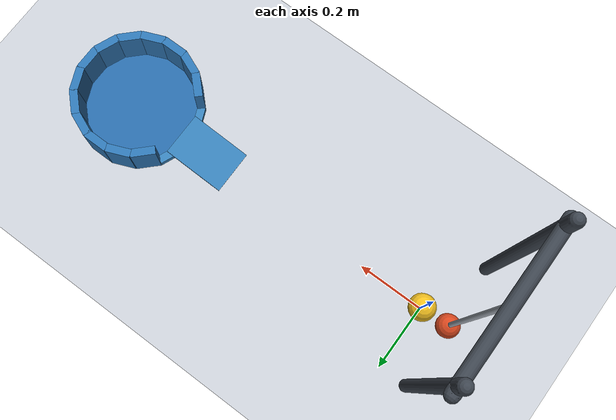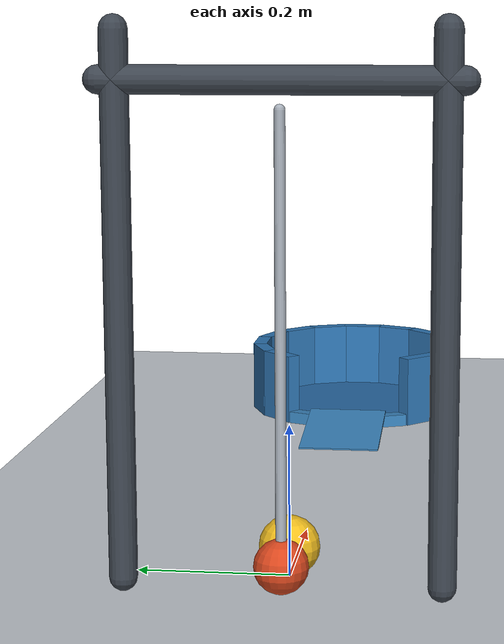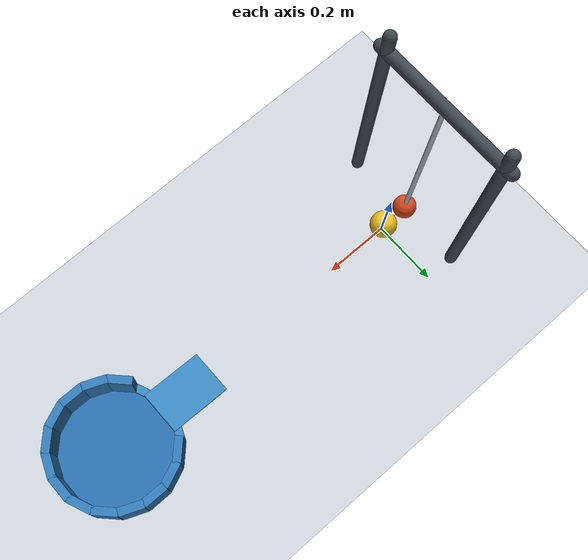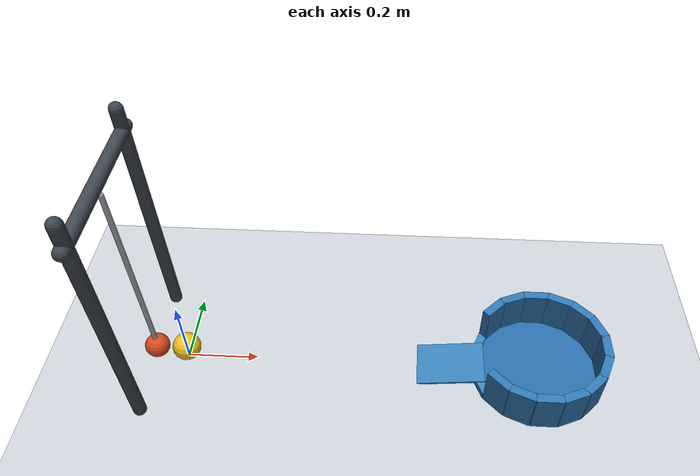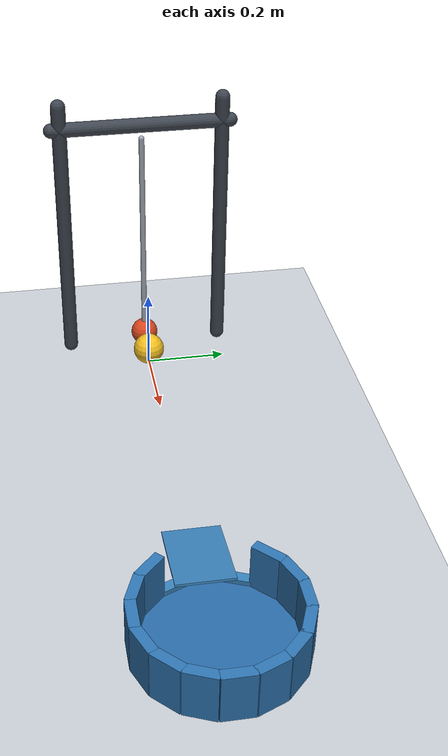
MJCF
<mujoco model="pendulum_ball_cup">
  <compiler angle="radian" autolimits="true"/>
  <option timestep="0.002" gravity="0 0 -9.81" integrator="implicitfast" solver="Newton" iterations="80" cone="elliptic"/>
  <size njmax="2000" nconmax="300"/>

  <visual>
    <global azimuth="125" elevation="-22"/>
    <headlight ambient="0.35 0.35 0.35" diffuse="0.65 0.65 0.65" specular="0.2 0.2 0.2"/>
  </visual>

  <worldbody>
    <light name="main_light" pos="0.5 -1.5 3" dir="0 0 -1" diffuse="0.8 0.8 0.8"/>
    <geom name="floor" type="plane" size="3 2 0.1" rgba="0.78 0.80 0.83 1" friction="0.45 0.005 0.0002" condim="6" solref="0.008 1" solimp="0.95 0.99 0.001"/>

    <body name="support" pos="-0.085 0 0.64">
      <geom name="support_left_leg" type="capsule" fromto="0 -0.20 -0.62 0 -0.20 0.06" size="0.018" rgba="0.24 0.27 0.31 1"/>
      <geom name="support_right_leg" type="capsule" fromto="0 0.20 -0.62 0 0.20 0.06" size="0.018" rgba="0.24 0.27 0.31 1"/>
      <geom name="support_crossbar" type="capsule" fromto="0 -0.22 0 0 0.22 0" size="0.018" rgba="0.24 0.27 0.31 1"/>
    </body>

    <body name="pendulum" pos="-0.085 0 0.64">
      <joint name="pendulum_hinge" type="hinge" axis="0 1 0" range="-0.9 0.9" damping="0.006"/>
      <geom name="pendulum_rod" type="capsule" fromto="0 0 -0.035 0 0 -0.575" size="0.007" mass="0.018" rgba="0.65 0.68 0.72 1" friction="0.35 0.005 0.0002" condim="6"/>
      <geom name="pendulum_bob" type="sphere" pos="0 0 -0.6" size="0.035" mass="0.24" rgba="0.85 0.28 0.12 1" friction="0.35 0.005 0.0002" condim="6" solref="0.008 1" solimp="0.95 0.99 0.001"/>
    </body>

    <body name="ball" pos="0 0 0.04">
      <freejoint name="ball_free"/>
      <geom name="ball" type="sphere" size="0.04" mass="0.05" rgba="0.95 0.75 0.12 1" friction="0.45 0.005 0.0002" condim="6" solref="0.008 1" solimp="0.95 0.99 0.001"/>
    </body>

    <!-- Fixed receiving cup, centered exactly 1 m from the ball's start.
         A ramp crosses its lowered front lip; the other walls retain the ball. -->
    <body name="cup" pos="1 0 0">
      <geom name="cup_base" type="cylinder" pos="0 0 0.004" size="0.187 0.004" rgba="0.16 0.42 0.66 1" friction="0.65 0.015 0.004" condim="6" solref="0.008 1" solimp="0.95 0.99 0.001"/>
      <geom name="cup_entry_ramp" type="box" pos="-0.245 0 0.010" euler="0 -0.126 0" size="0.095 0.067 0.003" rgba="0.22 0.51 0.73 1" friction="0.45 0.005 0.0002" condim="6" solref="0.008 1" solimp="0.95 0.99 0.001"/>

      <geom name="cup_wall_00" type="box" pos="0.175 0 0.060" euler="0 0 0" size="0.012 0.036 0.060" rgba="0.18 0.46 0.70 1" friction="0.65 0.015 0.004" condim="6" solref="0.008 1"/>
      <geom name="cup_wall_01" type="box" pos="0.161679 0.066970 0.060" euler="0 0 0.392699" size="0.012 0.036 0.060" rgba="0.18 0.46 0.70 1" friction="0.65 0.015 0.004" condim="6" solref="0.008 1"/>
      <geom name="cup_wall_02" type="box" pos="0.123744 0.123744 0.060" euler="0 0 0.785398" size="0.012 0.036 0.060" rgba="0.18 0.46 0.70 1" friction="0.65 0.015 0.004" condim="6" solref="0.008 1"/>
      <geom name="cup_wall_03" type="box" pos="0.066970 0.161679 0.060" euler="0 0 1.178097" size="0.012 0.036 0.060" rgba="0.18 0.46 0.70 1" friction="0.65 0.015 0.004" condim="6" solref="0.008 1"/>
      <geom name="cup_wall_04" type="box" pos="0 0.175 0.060" euler="0 0 1.570796" size="0.012 0.036 0.060" rgba="0.18 0.46 0.70 1" friction="0.65 0.015 0.004" condim="6" solref="0.008 1"/>
      <geom name="cup_wall_05" type="box" pos="-0.066970 0.161679 0.060" euler="0 0 1.963495" size="0.012 0.036 0.060" rgba="0.18 0.46 0.70 1" friction="0.65 0.015 0.004" condim="6" solref="0.008 1"/>
      <geom name="cup_wall_06" type="box" pos="-0.123744 0.123744 0.060" euler="0 0 2.356194" size="0.012 0.036 0.060" rgba="0.18 0.46 0.70 1" friction="0.65 0.015 0.004" condim="6" solref="0.008 1"/>

      <geom name="cup_front_lip_07" type="box" pos="-0.161679 0.066970 0.010" euler="0 0 2.748894" size="0.012 0.036 0.010" rgba="0.22 0.51 0.73 1" friction="0.45 0.005 0.0002" condim="6" solref="0.008 1"/>
      <geom name="cup_front_lip_08" type="box" pos="-0.175 0 0.010" euler="0 0 3.141593" size="0.012 0.036 0.010" rgba="0.22 0.51 0.73 1" friction="0.45 0.005 0.0002" condim="6" solref="0.008 1"/>
      <geom name="cup_front_lip_09" type="box" pos="-0.161679 -0.066970 0.010" euler="0 0 3.534292" size="0.012 0.036 0.010" rgba="0.22 0.51 0.73 1" friction="0.45 0.005 0.0002" condim="6" solref="0.008 1"/>

      <geom name="cup_wall_10" type="box" pos="-0.123744 -0.123744 0.060" euler="0 0 3.926991" size="0.012 0.036 0.060" rgba="0.18 0.46 0.70 1" friction="0.65 0.015 0.004" condim="6" solref="0.008 1"/>
      <geom name="cup_wall_11" type="box" pos="-0.066970 -0.161679 0.060" euler="0 0 4.319690" size="0.012 0.036 0.060" rgba="0.18 0.46 0.70 1" friction="0.65 0.015 0.004" condim="6" solref="0.008 1"/>
      <geom name="cup_wall_12" type="box" pos="0 -0.175 0.060" euler="0 0 4.712389" size="0.012 0.036 0.060" rgba="0.18 0.46 0.70 1" friction="0.65 0.015 0.004" condim="6" solref="0.008 1"/>
      <geom name="cup_wall_13" type="box" pos="0.066970 -0.161679 0.060" euler="0 0 5.105088" size="0.012 0.036 0.060" rgba="0.18 0.46 0.70 1" friction="0.65 0.015 0.004" condim="6" solref="0.008 1"/>
      <geom name="cup_wall_14" type="box" pos="0.123744 -0.123744 0.060" euler="0 0 5.497787" size="0.012 0.036 0.060" rgba="0.18 0.46 0.70 1" friction="0.65 0.015 0.004" condim="6" solref="0.008 1"/>
      <geom name="cup_wall_15" type="box" pos="0.161679 -0.066970 0.060" euler="0 0 5.890486" size="0.012 0.036 0.060" rgba="0.18 0.46 0.70 1" friction="0.65 0.015 0.004" condim="6" solref="0.008 1"/>
    </body>
  </worldbody>

  <keyframe>
    <key name="start" qpos="0.6 0 0 0.04 1 0 0 0" qvel="0 0 0 0 0 0 0"/>
  </keyframe>
</mujoco>
